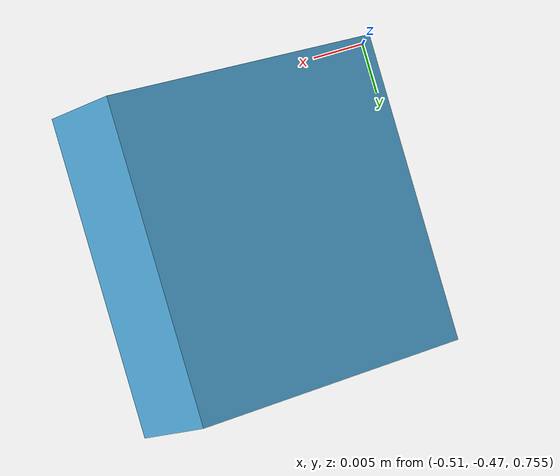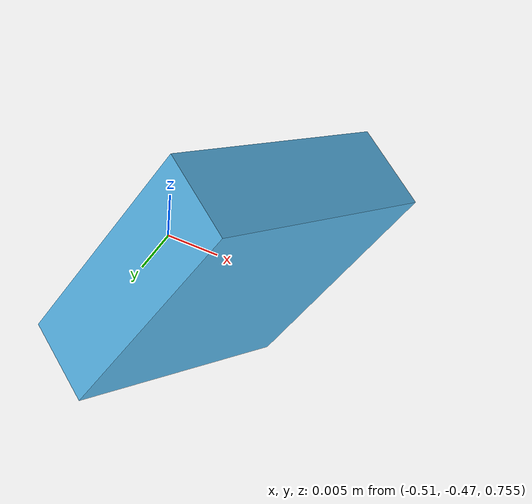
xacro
<?xml version="1.0" encoding="utf-8"?>
<robot xmlns:xacro="http://wiki.ros.org/xacro" name="sam_camera">
  <link name="world"/>
  <joint name="camera_jump_joint" type="fixed">
    <parent link="world" />
    <child link="camera_jump_link" />
    <origin xyz="-0.495 -0.455 0.77" rpy="${0 * pi / 180} ${55 * pi / 180} ${0 * pi / 180}" />
  </joint>
  <link name="camera_jump_link">
    <visual>
      <geometry>
        <box size="0.010 0.03 0.03" />
      </geometry>
      <color rgba="1 0 0 1" />
    </visual>
  </link>

  <joint name="camera_joint" type="fixed">
    <parent link="camera_jump_link" />
    <child link="camera_link" />
    <origin xyz="0 0 0" rpy="${0 * pi / 180} ${0 * pi / 180} ${0 * pi / 180}" />
  </joint>
  <link name="camera_link">
    <visual>
      <geometry>
        <box size="0.010 0.03 0.03" />
      </geometry>
      <color rgba="1 1 0 1" />
    </visual>
  </link>

  <joint name="camera_optical_joint" type="fixed">
    <origin xyz="0 0 0" rpy="${-pi/2} 0 ${-90 * pi / 180}" />
    <parent link="camera_link" />
    <child link="camera_link_optical" />
  </joint>

  <link name="camera_link_optical"></link>

  <gazebo reference="camera_link">
    <material>Gazebo/Red</material>
    <sensor name="ar_camera" type="camera">
      <pose> 0 0 0 0 0 0 </pose>
      <visualize>true</visualize>
      <update_rate>10</update_rate>
      <camera>
        <camera_info_topic>ar_camera/camera_info</camera_info_topic>
        <horizontal_fov>1.089</horizontal_fov>
        <image>
          <format>R8G8B8</format>
          <width>640</width>
          <height>480</height>
        </image>
        <clip>
          <near>0.05</near>
          <far>8.0</far>
        </clip>
      </camera>
      <topic>ar_camera/image_raw</topic>
      <gz_frame_id>camera_link_optical</gz_frame_id>
    </sensor>
  </gazebo>
</robot>
